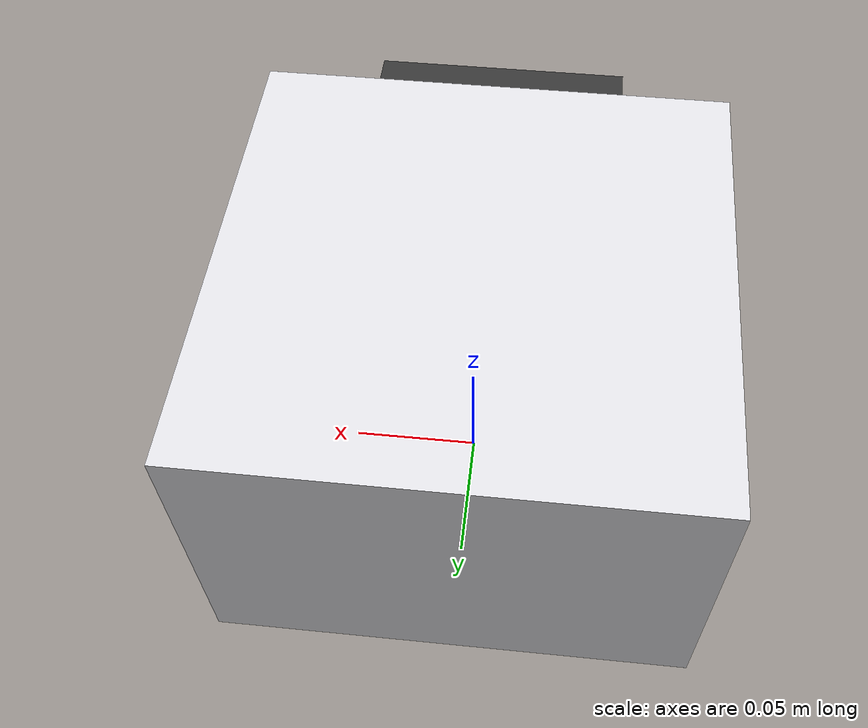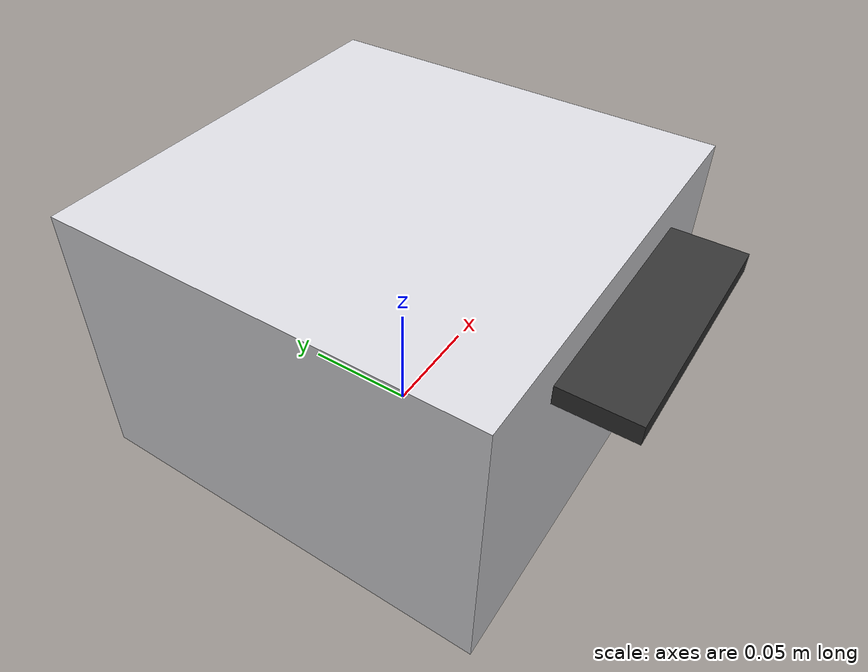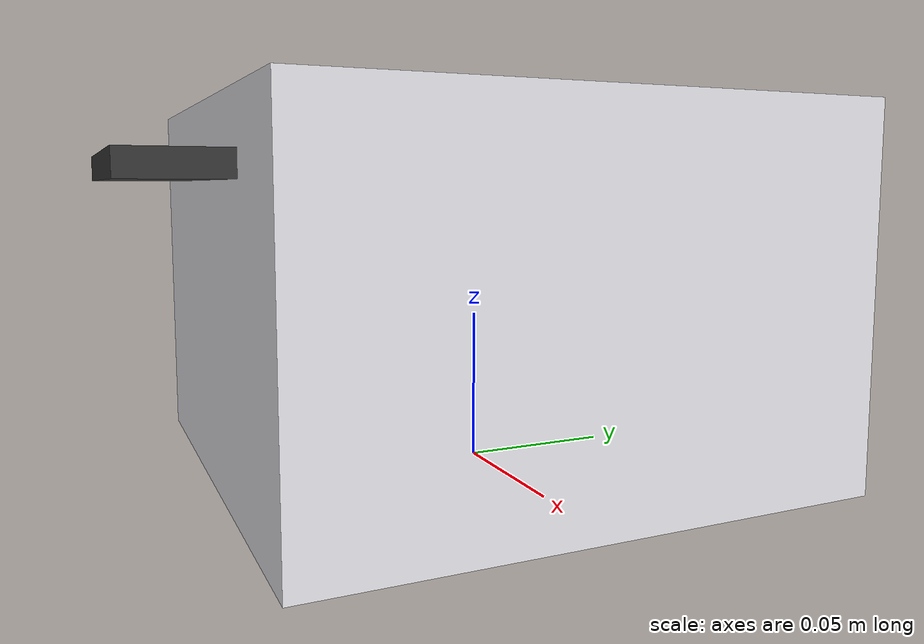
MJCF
<?xml version="1.0" encoding="utf-8"?>
<mujoco model="xrf_rock_analyzer">
  <compiler angle="radian" autolimits="true"/>
  <default>
    <default class="body"><geom contype="1" conaffinity="1"/></default>
  </default>
  <worldbody>
    <body name="base">
      <geom type="box" size="0.09 0.09 0.06" pos="0 0 0.06" rgba="0.85 0.85 0.87 1" class="body"/>
      <geom type="box" size="0.027 0.0045 0.015" pos="-0.045 -0.081 0.09" rgba="0.9 0.7 0.1 1" class="body"/>
      <body name="sample_tray" pos="0 -0.09 0.10">
        <joint name="sample_tray_joint" type="slide" axis="0 1 0" range="0 0.10" damping="1.0" frictionloss="0.3"/>
  <geom type="box" size="0.05 0.03 0.004" pos="0 0 0" rgba="0.2 0.2 0.2 1" class="body"/>
      </body>
    </body>
  </worldbody>
</mujoco>
